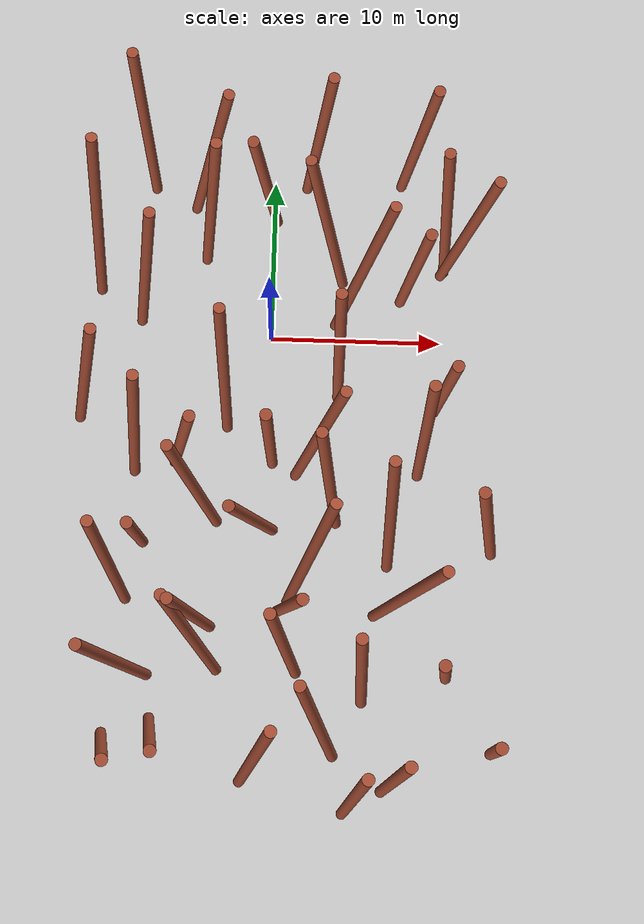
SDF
<sdf version="1.5">
 <world name="default">
  <include><uri>model://sun</uri></include>
  <include><uri>model://ground_plane</uri></include>
  <include><uri>model://asphalt_plane</uri><pose>0 0 -0.000001 0 0 0</pose></include>
  <model name="unit_cylinder_6">
   <pose>-7.63744 -24.13479 7.70000 0.12581 0.13626 0.00000</pose>
   <gravity>0 0 0</gravity>
   <link name="link">
    <inertial>
     <mass>100</mass>
     <inertia><ixx>20</ixx><ixy>0</ixy><ixz>0</ixz><iyy>20</iyy><iyz>0</iyz><izz>20</izz></inertia>
    </inertial>
    <collision name="collision">
     <geometry><cylinder><radius>0.300</radius><length>15.000</length></cylinder></geometry>
    </collision>
    <visual name="visual">
     <geometry><cylinder><radius>0.300</radius><length>15.000</length></cylinder></geometry>
     <material>
      <script><name>Gazebo/Bricks</name><uri>file://media/materials/scripts/gazebo.material</uri></script>
     </material>
    </visual>
   </link>
   <static>1</static>
  </model>
  <model name="unit_cylinder_7">
   <pose>-7.21971 -19.97460 7.70000 0.00352 -0.12097 0.00000</pose>
   <gravity>0 0 0</gravity>
   <link name="link">
    <inertial>
     <mass>100</mass>
     <inertia><ixx>20</ixx><ixy>0</ixy><ixz>0</ixz><iyy>20</iyy><iyz>0</iyz><izz>20</izz></inertia>
    </inertial>
    <collision name="collision">
     <geometry><cylinder><radius>0.300</radius><length>15.000</length></cylinder></geometry>
    </collision>
    <visual name="visual">
     <geometry><cylinder><radius>0.300</radius><length>15.000</length></cylinder></geometry>
     <material>
      <script><name>Gazebo/Bricks</name><uri>file://media/materials/scripts/gazebo.material</uri></script>
     </material>
    </visual>
   </link>
   <static>1</static>
  </model>
  <model name="unit_cylinder_8">
   <pose>-7.85168 -15.01514 7.70000 -0.09576 -0.01622 0.00000</pose>
   <gravity>0 0 0</gravity>
   <link name="link">
    <inertial>
     <mass>100</mass>
     <inertia><ixx>20</ixx><ixy>0</ixy><ixz>0</ixz><iyy>20</iyy><iyz>0</iyz><izz>20</izz></inertia>
    </inertial>
    <collision name="collision">
     <geometry><cylinder><radius>0.300</radius><length>15.000</length></cylinder></geometry>
    </collision>
    <visual name="visual">
     <geometry><cylinder><radius>0.300</radius><length>15.000</length></cylinder></geometry>
     <material>
      <script><name>Gazebo/Bricks</name><uri>file://media/materials/scripts/gazebo.material</uri></script>
     </material>
    </visual>
    <kinematic>1</kinematic>
   </link>
   <static>0</static>
   <plugin name="dynamic_obstacle_motion_8" filename="libobstaclePathPlugin.so">
    <motion_type>proximity_linear</motion_type>
    <direction>-0.683871958 -0.729602046 0.000000000</direction>
    <velocity>0.864553433</velocity>
    <activation_distance>20.000000000</activation_distance>
    <activation_model>iris</activation_model>
    <orientation>false</orientation>
    <marker_enabled>true</marker_enabled>
    <marker_id>8</marker_id>
    <marker_radius>0.300000000</marker_radius>
    <marker_height>15.000000000</marker_height>
    <marker_rate>20.0</marker_rate>
    <marker_topic>/uav_simulator/dynamic_obstacles</marker_topic>
    <marker_frame>map</marker_frame>
   </plugin>
  </model>
  <model name="unit_cylinder_9">
   <pose>-6.52075 -13.38467 7.70000 0.12282 0.05243 0.00000</pose>
   <gravity>0 0 0</gravity>
   <link name="link">
    <inertial>
     <mass>100</mass>
     <inertia><ixx>20</ixx><ixy>0</ixy><ixz>0</ixz><iyy>20</iyy><iyz>0</iyz><izz>20</izz></inertia>
    </inertial>
    <collision name="collision">
     <geometry><cylinder><radius>0.300</radius><length>15.000</length></cylinder></geometry>
    </collision>
    <visual name="visual">
     <geometry><cylinder><radius>0.300</radius><length>15.000</length></cylinder></geometry>
     <material>
      <script><name>Gazebo/Bricks</name><uri>file://media/materials/scripts/gazebo.material</uri></script>
     </material>
    </visual>
   </link>
   <static>1</static>
  </model>
  <model name="unit_cylinder_10">
   <pose>-6.92610 -7.73222 7.70000 -0.07882 0.08934 0.00000</pose>
   <gravity>0 0 0</gravity>
   <link name="link">
    <inertial>
     <mass>100</mass>
     <inertia><ixx>20</ixx><ixy>0</ixy><ixz>0</ixz><iyy>20</iyy><iyz>0</iyz><izz>20</izz></inertia>
    </inertial>
    <collision name="collision">
     <geometry><cylinder><radius>0.300</radius><length>15.000</length></cylinder></geometry>
    </collision>
    <visual name="visual">
     <geometry><cylinder><radius>0.300</radius><length>15.000</length></cylinder></geometry>
     <material>
      <script><name>Gazebo/Bricks</name><uri>file://media/materials/scripts/gazebo.material</uri></script>
     </material>
    </visual>
    <kinematic>1</kinematic>
   </link>
   <static>0</static>
   <plugin name="dynamic_obstacle_motion_10" filename="libobstaclePathPlugin.so">
    <motion_type>proximity_linear</motion_type>
    <direction>-0.184538150 -0.982825351 0.000000000</direction>
    <velocity>0.998804224</velocity>
    <activation_distance>20.000000000</activation_distance>
    <activation_model>iris</activation_model>
    <orientation>false</orientation>
    <marker_enabled>true</marker_enabled>
    <marker_id>10</marker_id>
    <marker_radius>0.300000000</marker_radius>
    <marker_height>15.000000000</marker_height>
    <marker_rate>20.0</marker_rate>
    <marker_topic>/uav_simulator/dynamic_obstacles</marker_topic>
    <marker_frame>map</marker_frame>
   </plugin>
  </model>
  <model name="unit_cylinder_11">
   <pose>-9.69069 -5.02940 7.70000 -0.02254 0.16852 0.00000</pose>
   <gravity>0 0 0</gravity>
   <link name="link">
    <inertial>
     <mass>100</mass>
     <inertia><ixx>20</ixx><ixy>0</ixy><ixz>0</ixz><iyy>20</iyy><iyz>0</iyz><izz>20</izz></inertia>
    </inertial>
    <collision name="collision">
     <geometry><cylinder><radius>0.300</radius><length>15.000</length></cylinder></geometry>
    </collision>
    <visual name="visual">
     <geometry><cylinder><radius>0.300</radius><length>15.000</length></cylinder></geometry>
     <material>
      <script><name>Gazebo/Bricks</name><uri>file://media/materials/scripts/gazebo.material</uri></script>
     </material>
    </visual>
    <kinematic>1</kinematic>
   </link>
   <static>0</static>
   <plugin name="dynamic_obstacle_motion_11" filename="libobstaclePathPlugin.so">
    <motion_type>proximity_linear</motion_type>
    <direction>-0.606140332 -0.795357717 0.000000000</direction>
    <velocity>0.567851102</velocity>
    <activation_distance>20.000000000</activation_distance>
    <activation_model>iris</activation_model>
    <orientation>false</orientation>
    <marker_enabled>true</marker_enabled>
    <marker_id>11</marker_id>
    <marker_radius>0.300000000</marker_radius>
    <marker_height>15.000000000</marker_height>
    <marker_rate>20.0</marker_rate>
    <marker_topic>/uav_simulator/dynamic_obstacles</marker_topic>
    <marker_frame>map</marker_frame>
   </plugin>
  </model>
  <model name="unit_cylinder_12">
   <pose>-6.78483 1.04766 7.70000 -0.02488 0.11770 0.00000</pose>
   <gravity>0 0 0</gravity>
   <link name="link">
    <inertial>
     <mass>100</mass>
     <inertia><ixx>20</ixx><ixy>0</ixy><ixz>0</ixz><iyy>20</iyy><iyz>0</iyz><izz>20</izz></inertia>
    </inertial>
    <collision name="collision">
     <geometry><cylinder><radius>0.300</radius><length>15.000</length></cylinder></geometry>
    </collision>
    <visual name="visual">
     <geometry><cylinder><radius>0.300</radius><length>15.000</length></cylinder></geometry>
     <material>
      <script><name>Gazebo/Bricks</name><uri>file://media/materials/scripts/gazebo.material</uri></script>
     </material>
    </visual>
   </link>
   <static>1</static>
  </model>
  <model name="unit_cylinder_13">
   <pose>-9.58581 3.96208 7.70000 -0.16946 0.07617 0.00000</pose>
   <gravity>0 0 0</gravity>
   <link name="link">
    <inertial>
     <mass>100</mass>
     <inertia><ixx>20</ixx><ixy>0</ixy><ixz>0</ixz><iyy>20</iyy><iyz>0</iyz><izz>20</izz></inertia>
    </inertial>
    <collision name="collision">
     <geometry><cylinder><radius>0.300</radius><length>15.000</length></cylinder></geometry>
    </collision>
    <visual name="visual">
     <geometry><cylinder><radius>0.300</radius><length>15.000</length></cylinder></geometry>
     <material>
      <script><name>Gazebo/Bricks</name><uri>file://media/materials/scripts/gazebo.material</uri></script>
     </material>
    </visual>
   </link>
   <static>1</static>
  </model>
  <model name="unit_cylinder_14">
   <pose>-7.21917 9.66156 7.70000 -0.03544 -0.00035 0.00000</pose>
   <gravity>0 0 0</gravity>
   <link name="link">
    <inertial>
     <mass>100</mass>
     <inertia><ixx>20</ixx><ixy>0</ixy><ixz>0</ixz><iyy>20</iyy><iyz>0</iyz><izz>20</izz></inertia>
    </inertial>
    <collision name="collision">
     <geometry><cylinder><radius>0.300</radius><length>15.000</length></cylinder></geometry>
    </collision>
    <visual name="visual">
     <geometry><cylinder><radius>0.300</radius><length>15.000</length></cylinder></geometry>
     <material>
      <script><name>Gazebo/Bricks</name><uri>file://media/materials/scripts/gazebo.material</uri></script>
     </material>
    </visual>
   </link>
   <static>1</static>
  </model>
  <model name="unit_cylinder_19">
   <pose>-5.27744 -23.47259 7.70000 0.15441 0.10550 0.00000</pose>
   <gravity>0 0 0</gravity>
   <link name="link">
    <inertial>
     <mass>100</mass>
     <inertia><ixx>20</ixx><ixy>0</ixy><ixz>0</ixz><iyy>20</iyy><iyz>0</iyz><izz>20</izz></inertia>
    </inertial>
    <collision name="collision">
     <geometry><cylinder><radius>0.300</radius><length>15.000</length></cylinder></geometry>
    </collision>
    <visual name="visual">
     <geometry><cylinder><radius>0.300</radius><length>15.000</length></cylinder></geometry>
     <material>
      <script><name>Gazebo/Bricks</name><uri>file://media/materials/scripts/gazebo.material</uri></script>
     </material>
    </visual>
    <kinematic>1</kinematic>
   </link>
   <static>0</static>
   <plugin name="dynamic_obstacle_motion_19" filename="libobstaclePathPlugin.so">
    <motion_type>proximity_linear</motion_type>
    <direction>-0.062288158 0.998058207 0.000000000</direction>
    <velocity>1.470388580</velocity>
    <activation_distance>20.000000000</activation_distance>
    <activation_model>iris</activation_model>
    <orientation>false</orientation>
    <marker_enabled>true</marker_enabled>
    <marker_id>19</marker_id>
    <marker_radius>0.300000000</marker_radius>
    <marker_height>15.000000000</marker_height>
    <marker_rate>20.0</marker_rate>
    <marker_topic>/uav_simulator/dynamic_obstacles</marker_topic>
    <marker_frame>map</marker_frame>
   </plugin>
  </model>
  <model name="unit_cylinder_20">
   <pose>-3.41988 -18.59345 7.70000 -0.13182 -0.13110 0.00000</pose>
   <gravity>0 0 0</gravity>
   <link name="link">
    <inertial>
     <mass>100</mass>
     <inertia><ixx>20</ixx><ixy>0</ixy><ixz>0</ixz><iyy>20</iyy><iyz>0</iyz><izz>20</izz></inertia>
    </inertial>
    <collision name="collision">
     <geometry><cylinder><radius>0.300</radius><length>15.000</length></cylinder></geometry>
    </collision>
    <visual name="visual">
     <geometry><cylinder><radius>0.300</radius><length>15.000</length></cylinder></geometry>
     <material>
      <script><name>Gazebo/Bricks</name><uri>file://media/materials/scripts/gazebo.material</uri></script>
     </material>
    </visual>
    <kinematic>1</kinematic>
   </link>
   <static>0</static>
   <plugin name="dynamic_obstacle_motion_20" filename="libobstaclePathPlugin.so">
    <motion_type>proximity_linear</motion_type>
    <direction>-0.927345403 -0.374206499 -0.000000000</direction>
    <velocity>1.394727384</velocity>
    <activation_distance>20.000000000</activation_distance>
    <activation_model>iris</activation_model>
    <orientation>false</orientation>
    <marker_enabled>true</marker_enabled>
    <marker_id>20</marker_id>
    <marker_radius>0.300000000</marker_radius>
    <marker_height>15.000000000</marker_height>
    <marker_rate>20.0</marker_rate>
    <marker_topic>/uav_simulator/dynamic_obstacles</marker_topic>
    <marker_frame>map</marker_frame>
   </plugin>
  </model>
  <model name="unit_cylinder_21">
   <pose>-3.49956 -17.47808 7.70000 0.04058 -0.07986 0.00000</pose>
   <gravity>0 0 0</gravity>
   <link name="link">
    <inertial>
     <mass>100</mass>
     <inertia><ixx>20</ixx><ixy>0</ixy><ixz>0</ixz><iyy>20</iyy><iyz>0</iyz><izz>20</izz></inertia>
    </inertial>
    <collision name="collision">
     <geometry><cylinder><radius>0.300</radius><length>15.000</length></cylinder></geometry>
    </collision>
    <visual name="visual">
     <geometry><cylinder><radius>0.300</radius><length>15.000</length></cylinder></geometry>
     <material>
      <script><name>Gazebo/Bricks</name><uri>file://media/materials/scripts/gazebo.material</uri></script>
     </material>
    </visual>
   </link>
   <static>1</static>
  </model>
  <model name="unit_cylinder_22">
   <pose>-3.60769 -10.86104 7.70000 -0.04009 -0.11386 0.00000</pose>
   <gravity>0 0 0</gravity>
   <link name="link">
    <inertial>
     <mass>100</mass>
     <inertia><ixx>20</ixx><ixy>0</ixy><ixz>0</ixz><iyy>20</iyy><iyz>0</iyz><izz>20</izz></inertia>
    </inertial>
    <collision name="collision">
     <geometry><cylinder><radius>0.300</radius><length>15.000</length></cylinder></geometry>
    </collision>
    <visual name="visual">
     <geometry><cylinder><radius>0.300</radius><length>15.000</length></cylinder></geometry>
     <material>
      <script><name>Gazebo/Bricks</name><uri>file://media/materials/scripts/gazebo.material</uri></script>
     </material>
    </visual>
   </link>
   <static>1</static>
  </model>
  <model name="unit_cylinder_23">
   <pose>-4.39550 -8.40183 7.70000 0.09152 0.12374 0.00000</pose>
   <gravity>0 0 0</gravity>
   <link name="link">
    <inertial>
     <mass>100</mass>
     <inertia><ixx>20</ixx><ixy>0</ixy><ixz>0</ixz><iyy>20</iyy><iyz>0</iyz><izz>20</izz></inertia>
    </inertial>
    <collision name="collision">
     <geometry><cylinder><radius>0.300</radius><length>15.000</length></cylinder></geometry>
    </collision>
    <visual name="visual">
     <geometry><cylinder><radius>0.300</radius><length>15.000</length></cylinder></geometry>
     <material>
      <script><name>Gazebo/Bricks</name><uri>file://media/materials/scripts/gazebo.material</uri></script>
     </material>
    </visual>
    <kinematic>1</kinematic>
   </link>
   <static>0</static>
   <plugin name="dynamic_obstacle_motion_23" filename="libobstaclePathPlugin.so">
    <motion_type>proximity_linear</motion_type>
    <direction>0.630403638 -0.776267514 0.000000000</direction>
    <velocity>1.757489848</velocity>
    <activation_distance>20.000000000</activation_distance>
    <activation_model>iris</activation_model>
    <orientation>false</orientation>
    <marker_enabled>true</marker_enabled>
    <marker_id>23</marker_id>
    <marker_radius>0.300000000</marker_radius>
    <marker_height>15.000000000</marker_height>
    <marker_rate>20.0</marker_rate>
    <marker_topic>/uav_simulator/dynamic_obstacles</marker_topic>
    <marker_frame>map</marker_frame>
   </plugin>
  </model>
  <model name="unit_cylinder_24">
   <pose>-2.30949 -4.59314 7.70000 -0.12818 0.00588 0.00000</pose>
   <gravity>0 0 0</gravity>
   <link name="link">
    <inertial>
     <mass>100</mass>
     <inertia><ixx>20</ixx><ixy>0</ixy><ixz>0</ixz><iyy>20</iyy><iyz>0</iyz><izz>20</izz></inertia>
    </inertial>
    <collision name="collision">
     <geometry><cylinder><radius>0.300</radius><length>15.000</length></cylinder></geometry>
    </collision>
    <visual name="visual">
     <geometry><cylinder><radius>0.300</radius><length>15.000</length></cylinder></geometry>
     <material>
      <script><name>Gazebo/Bricks</name><uri>file://media/materials/scripts/gazebo.material</uri></script>
     </material>
    </visual>
   </link>
   <static>1</static>
  </model>
  <model name="unit_cylinder_25">
   <pose>-3.36916 4.95605 7.70000 -0.01222 0.08057 0.00000</pose>
   <gravity>0 0 0</gravity>
   <link name="link">
    <inertial>
     <mass>100</mass>
     <inertia><ixx>20</ixx><ixy>0</ixy><ixz>0</ixz><iyy>20</iyy><iyz>0</iyz><izz>20</izz></inertia>
    </inertial>
    <collision name="collision">
     <geometry><cylinder><radius>0.300</radius><length>15.000</length></cylinder></geometry>
    </collision>
    <visual name="visual">
     <geometry><cylinder><radius>0.300</radius><length>15.000</length></cylinder></geometry>
     <material>
      <script><name>Gazebo/Bricks</name><uri>file://media/materials/scripts/gazebo.material</uri></script>
     </material>
    </visual>
    <kinematic>1</kinematic>
   </link>
   <static>0</static>
   <plugin name="dynamic_obstacle_motion_25" filename="libobstaclePathPlugin.so">
    <motion_type>proximity_linear</motion_type>
    <direction>0.525420193 0.850842889 0.000000000</direction>
    <velocity>0.675819266</velocity>
    <activation_distance>20.000000000</activation_distance>
    <activation_model>iris</activation_model>
    <orientation>false</orientation>
    <marker_enabled>true</marker_enabled>
    <marker_id>25</marker_id>
    <marker_radius>0.300000000</marker_radius>
    <marker_height>15.000000000</marker_height>
    <marker_rate>20.0</marker_rate>
    <marker_topic>/uav_simulator/dynamic_obstacles</marker_topic>
    <marker_frame>map</marker_frame>
   </plugin>
  </model>
  <model name="unit_cylinder_26">
   <pose>-3.48844 7.95082 7.70000 0.02307 0.16694 0.00000</pose>
   <gravity>0 0 0</gravity>
   <link name="link">
    <inertial>
     <mass>100</mass>
     <inertia><ixx>20</ixx><ixy>0</ixy><ixz>0</ixz><iyy>20</iyy><iyz>0</iyz><izz>20</izz></inertia>
    </inertial>
    <collision name="collision">
     <geometry><cylinder><radius>0.300</radius><length>15.000</length></cylinder></geometry>
    </collision>
    <visual name="visual">
     <geometry><cylinder><radius>0.300</radius><length>15.000</length></cylinder></geometry>
     <material>
      <script><name>Gazebo/Bricks</name><uri>file://media/materials/scripts/gazebo.material</uri></script>
     </material>
    </visual>
    <kinematic>1</kinematic>
   </link>
   <static>0</static>
   <plugin name="dynamic_obstacle_motion_26" filename="libobstaclePathPlugin.so">
    <motion_type>proximity_linear</motion_type>
    <direction>-0.587286721 -0.809378964 0.000000000</direction>
    <velocity>0.431419781</velocity>
    <activation_distance>20.000000000</activation_distance>
    <activation_model>iris</activation_model>
    <orientation>false</orientation>
    <marker_enabled>true</marker_enabled>
    <marker_id>26</marker_id>
    <marker_radius>0.300000000</marker_radius>
    <marker_height>15.000000000</marker_height>
    <marker_rate>20.0</marker_rate>
    <marker_topic>/uav_simulator/dynamic_obstacles</marker_topic>
    <marker_frame>map</marker_frame>
   </plugin>
  </model>
  <model name="unit_cylinder_31">
   <pose>-0.04816 -24.60423 7.70000 -0.13135 0.12146 0.00000</pose>
   <gravity>0 0 0</gravity>
   <link name="link">
    <inertial>
     <mass>100</mass>
     <inertia><ixx>20</ixx><ixy>0</ixy><ixz>0</ixz><iyy>20</iyy><iyz>0</iyz><izz>20</izz></inertia>
    </inertial>
    <collision name="collision">
     <geometry><cylinder><radius>0.300</radius><length>15.000</length></cylinder></geometry>
    </collision>
    <visual name="visual">
     <geometry><cylinder><radius>0.300</radius><length>15.000</length></cylinder></geometry>
     <material>
      <script><name>Gazebo/Bricks</name><uri>file://media/materials/scripts/gazebo.material</uri></script>
     </material>
    </visual>
    <kinematic>1</kinematic>
   </link>
   <static>0</static>
   <plugin name="dynamic_obstacle_motion_31" filename="libobstaclePathPlugin.so">
    <motion_type>proximity_linear</motion_type>
    <direction>0.661827066 -0.749656545 0.000000000</direction>
    <velocity>1.083418146</velocity>
    <activation_distance>20.000000000</activation_distance>
    <activation_model>iris</activation_model>
    <orientation>false</orientation>
    <marker_enabled>true</marker_enabled>
    <marker_id>31</marker_id>
    <marker_radius>0.300000000</marker_radius>
    <marker_height>15.000000000</marker_height>
    <marker_rate>20.0</marker_rate>
    <marker_topic>/uav_simulator/dynamic_obstacles</marker_topic>
    <marker_frame>map</marker_frame>
   </plugin>
  </model>
  <model name="unit_cylinder_32">
   <pose>1.32426 -18.99143 7.70000 -0.08443 -0.08821 0.00000</pose>
   <gravity>0 0 0</gravity>
   <link name="link">
    <inertial>
     <mass>100</mass>
     <inertia><ixx>20</ixx><ixy>0</ixy><ixz>0</ixz><iyy>20</iyy><iyz>0</iyz><izz>20</izz></inertia>
    </inertial>
    <collision name="collision">
     <geometry><cylinder><radius>0.300</radius><length>15.000</length></cylinder></geometry>
    </collision>
    <visual name="visual">
     <geometry><cylinder><radius>0.300</radius><length>15.000</length></cylinder></geometry>
     <material>
      <script><name>Gazebo/Bricks</name><uri>file://media/materials/scripts/gazebo.material</uri></script>
     </material>
    </visual>
    <kinematic>1</kinematic>
   </link>
   <static>0</static>
   <plugin name="dynamic_obstacle_motion_32" filename="libobstaclePathPlugin.so">
    <motion_type>proximity_linear</motion_type>
    <direction>0.594069250 -0.804413902 0.000000000</direction>
    <velocity>0.808603611</velocity>
    <activation_distance>20.000000000</activation_distance>
    <activation_model>iris</activation_model>
    <orientation>false</orientation>
    <marker_enabled>true</marker_enabled>
    <marker_id>32</marker_id>
    <marker_radius>0.300000000</marker_radius>
    <marker_height>15.000000000</marker_height>
    <marker_rate>20.0</marker_rate>
    <marker_topic>/uav_simulator/dynamic_obstacles</marker_topic>
    <marker_frame>map</marker_frame>
   </plugin>
  </model>
  <model name="unit_cylinder_33">
   <pose>1.47575 -16.93388 7.70000 0.09516 0.08984 0.00000</pose>
   <gravity>0 0 0</gravity>
   <link name="link">
    <inertial>
     <mass>100</mass>
     <inertia><ixx>20</ixx><ixy>0</ixy><ixz>0</ixz><iyy>20</iyy><iyz>0</iyz><izz>20</izz></inertia>
    </inertial>
    <collision name="collision">
     <geometry><cylinder><radius>0.300</radius><length>15.000</length></cylinder></geometry>
    </collision>
    <visual name="visual">
     <geometry><cylinder><radius>0.300</radius><length>15.000</length></cylinder></geometry>
     <material>
      <script><name>Gazebo/Bricks</name><uri>file://media/materials/scripts/gazebo.material</uri></script>
     </material>
    </visual>
   </link>
   <static>1</static>
  </model>
  <model name="unit_cylinder_34">
   <pose>-0.48350 -12.46815 7.70000 0.12076 -0.12683 0.00000</pose>
   <gravity>0 0 0</gravity>
   <link name="link">
    <inertial>
     <mass>100</mass>
     <inertia><ixx>20</ixx><ixy>0</ixy><ixz>0</ixz><iyy>20</iyy><iyz>0</iyz><izz>20</izz></inertia>
    </inertial>
    <collision name="collision">
     <geometry><cylinder><radius>0.300</radius><length>15.000</length></cylinder></geometry>
    </collision>
    <visual name="visual">
     <geometry><cylinder><radius>0.300</radius><length>15.000</length></cylinder></geometry>
     <material>
      <script><name>Gazebo/Bricks</name><uri>file://media/materials/scripts/gazebo.material</uri></script>
     </material>
    </visual>
    <kinematic>1</kinematic>
   </link>
   <static>0</static>
   <plugin name="dynamic_obstacle_motion_34" filename="libobstaclePathPlugin.so">
    <motion_type>proximity_linear</motion_type>
    <direction>-0.536616075 -0.843826516 0.000000000</direction>
    <velocity>1.401978337</velocity>
    <activation_distance>20.000000000</activation_distance>
    <activation_model>iris</activation_model>
    <orientation>false</orientation>
    <marker_enabled>true</marker_enabled>
    <marker_id>34</marker_id>
    <marker_radius>0.300000000</marker_radius>
    <marker_height>15.000000000</marker_height>
    <marker_rate>20.0</marker_rate>
    <marker_topic>/uav_simulator/dynamic_obstacles</marker_topic>
    <marker_frame>map</marker_frame>
   </plugin>
  </model>
  <model name="unit_cylinder_35">
   <pose>0.24320 -8.28068 7.70000 0.08642 -0.01053 0.00000</pose>
   <gravity>0 0 0</gravity>
   <link name="link">
    <inertial>
     <mass>100</mass>
     <inertia><ixx>20</ixx><ixy>0</ixy><ixz>0</ixz><iyy>20</iyy><iyz>0</iyz><izz>20</izz></inertia>
    </inertial>
    <collision name="collision">
     <geometry><cylinder><radius>0.300</radius><length>15.000</length></cylinder></geometry>
    </collision>
    <visual name="visual">
     <geometry><cylinder><radius>0.300</radius><length>15.000</length></cylinder></geometry>
     <material>
      <script><name>Gazebo/Bricks</name><uri>file://media/materials/scripts/gazebo.material</uri></script>
     </material>
    </visual>
   </link>
   <static>1</static>
  </model>
  <model name="unit_cylinder_36">
   <pose>-0.36850 6.30102 7.70000 0.14632 -0.07336 0.00000</pose>
   <gravity>0 0 0</gravity>
   <link name="link">
    <inertial>
     <mass>100</mass>
     <inertia><ixx>20</ixx><ixy>0</ixy><ixz>0</ixz><iyy>20</iyy><iyz>0</iyz><izz>20</izz></inertia>
    </inertial>
    <collision name="collision">
     <geometry><cylinder><radius>0.300</radius><length>15.000</length></cylinder></geometry>
    </collision>
    <visual name="visual">
     <geometry><cylinder><radius>0.300</radius><length>15.000</length></cylinder></geometry>
     <material>
      <script><name>Gazebo/Bricks</name><uri>file://media/materials/scripts/gazebo.material</uri></script>
     </material>
    </visual>
    <kinematic>1</kinematic>
   </link>
   <static>0</static>
   <plugin name="dynamic_obstacle_motion_36" filename="libobstaclePathPlugin.so">
    <motion_type>proximity_linear</motion_type>
    <direction>-0.965125675 0.261786997 -0.000000000</direction>
    <velocity>0.670882417</velocity>
    <activation_distance>20.000000000</activation_distance>
    <activation_model>iris</activation_model>
    <orientation>false</orientation>
    <marker_enabled>true</marker_enabled>
    <marker_id>36</marker_id>
    <marker_radius>0.300000000</marker_radius>
    <marker_height>15.000000000</marker_height>
    <marker_rate>20.0</marker_rate>
    <marker_topic>/uav_simulator/dynamic_obstacles</marker_topic>
    <marker_frame>map</marker_frame>
   </plugin>
  </model>
  <model name="unit_cylinder_41">
   <pose>4.97613 -26.36178 7.70000 -0.10227 0.03844 0.00000</pose>
   <gravity>0 0 0</gravity>
   <link name="link">
    <inertial>
     <mass>100</mass>
     <inertia><ixx>20</ixx><ixy>0</ixy><ixz>0</ixz><iyy>20</iyy><iyz>0</iyz><izz>20</izz></inertia>
    </inertial>
    <collision name="collision">
     <geometry><cylinder><radius>0.300</radius><length>15.000</length></cylinder></geometry>
    </collision>
    <visual name="visual">
     <geometry><cylinder><radius>0.300</radius><length>15.000</length></cylinder></geometry>
     <material>
      <script><name>Gazebo/Bricks</name><uri>file://media/materials/scripts/gazebo.material</uri></script>
     </material>
    </visual>
   </link>
   <static>1</static>
  </model>
  <model name="unit_cylinder_42">
   <pose>3.11386 -22.83111 7.70000 -0.16963 -0.13553 0.00000</pose>
   <gravity>0 0 0</gravity>
   <link name="link">
    <inertial>
     <mass>100</mass>
     <inertia><ixx>20</ixx><ixy>0</ixy><ixz>0</ixz><iyy>20</iyy><iyz>0</iyz><izz>20</izz></inertia>
    </inertial>
    <collision name="collision">
     <geometry><cylinder><radius>0.300</radius><length>15.000</length></cylinder></geometry>
    </collision>
    <visual name="visual">
     <geometry><cylinder><radius>0.300</radius><length>15.000</length></cylinder></geometry>
     <material>
      <script><name>Gazebo/Bricks</name><uri>file://media/materials/scripts/gazebo.material</uri></script>
     </material>
    </visual>
    <kinematic>1</kinematic>
   </link>
   <static>0</static>
   <plugin name="dynamic_obstacle_motion_42" filename="libobstaclePathPlugin.so">
    <motion_type>proximity_linear</motion_type>
    <direction>0.186530361 0.982449197 -0.000000000</direction>
    <velocity>1.377841980</velocity>
    <activation_distance>20.000000000</activation_distance>
    <activation_model>iris</activation_model>
    <orientation>false</orientation>
    <marker_enabled>true</marker_enabled>
    <marker_id>42</marker_id>
    <marker_radius>0.300000000</marker_radius>
    <marker_height>15.000000000</marker_height>
    <marker_rate>20.0</marker_rate>
    <marker_topic>/uav_simulator/dynamic_obstacles</marker_topic>
    <marker_frame>map</marker_frame>
   </plugin>
  </model>
  <model name="unit_cylinder_43">
   <pose>5.28005 -20.25804 7.70000 -0.11826 -0.05108 0.00000</pose>
   <gravity>0 0 0</gravity>
   <link name="link">
    <inertial>
     <mass>100</mass>
     <inertia><ixx>20</ixx><ixy>0</ixy><ixz>0</ixz><iyy>20</iyy><iyz>0</iyz><izz>20</izz></inertia>
    </inertial>
    <collision name="collision">
     <geometry><cylinder><radius>0.300</radius><length>15.000</length></cylinder></geometry>
    </collision>
    <visual name="visual">
     <geometry><cylinder><radius>0.300</radius><length>15.000</length></cylinder></geometry>
     <material>
      <script><name>Gazebo/Bricks</name><uri>file://media/materials/scripts/gazebo.material</uri></script>
     </material>
    </visual>
   </link>
   <static>1</static>
  </model>
  <model name="unit_cylinder_44">
   <pose>2.49913 -14.36906 7.70000 -0.17038 0.15007 0.00000</pose>
   <gravity>0 0 0</gravity>
   <link name="link">
    <inertial>
     <mass>100</mass>
     <inertia><ixx>20</ixx><ixy>0</ixy><ixz>0</ixz><iyy>20</iyy><iyz>0</iyz><izz>20</izz></inertia>
    </inertial>
    <collision name="collision">
     <geometry><cylinder><radius>0.300</radius><length>15.000</length></cylinder></geometry>
    </collision>
    <visual name="visual">
     <geometry><cylinder><radius>0.300</radius><length>15.000</length></cylinder></geometry>
     <material>
      <script><name>Gazebo/Bricks</name><uri>file://media/materials/scripts/gazebo.material</uri></script>
     </material>
    </visual>
   </link>
   <static>1</static>
  </model>
  <model name="unit_cylinder_45">
   <pose>3.44280 -10.38845 7.70000 -0.09093 -0.08006 0.00000</pose>
   <gravity>0 0 0</gravity>
   <link name="link">
    <inertial>
     <mass>100</mass>
     <inertia><ixx>20</ixx><ixy>0</ixy><ixz>0</ixz><iyy>20</iyy><iyz>0</iyz><izz>20</izz></inertia>
    </inertial>
    <collision name="collision">
     <geometry><cylinder><radius>0.300</radius><length>15.000</length></cylinder></geometry>
    </collision>
    <visual name="visual">
     <geometry><cylinder><radius>0.300</radius><length>15.000</length></cylinder></geometry>
     <material>
      <script><name>Gazebo/Bricks</name><uri>file://media/materials/scripts/gazebo.material</uri></script>
     </material>
    </visual>
   </link>
   <static>1</static>
  </model>
  <model name="unit_cylinder_46">
   <pose>2.81095 -7.98750 7.70000 -0.04341 0.15385 0.00000</pose>
   <gravity>0 0 0</gravity>
   <link name="link">
    <inertial>
     <mass>100</mass>
     <inertia><ixx>20</ixx><ixy>0</ixy><ixz>0</ixz><iyy>20</iyy><iyz>0</iyz><izz>20</izz></inertia>
    </inertial>
    <collision name="collision">
     <geometry><cylinder><radius>0.300</radius><length>15.000</length></cylinder></geometry>
    </collision>
    <visual name="visual">
     <geometry><cylinder><radius>0.300</radius><length>15.000</length></cylinder></geometry>
     <material>
      <script><name>Gazebo/Bricks</name><uri>file://media/materials/scripts/gazebo.material</uri></script>
     </material>
    </visual>
   </link>
   <static>1</static>
  </model>
  <model name="unit_cylinder_47">
   <pose>3.83115 -3.13828 7.70000 -0.05172 -0.02404 0.00000</pose>
   <gravity>0 0 0</gravity>
   <link name="link">
    <inertial>
     <mass>100</mass>
     <inertia><ixx>20</ixx><ixy>0</ixy><ixz>0</ixz><iyy>20</iyy><iyz>0</iyz><izz>20</izz></inertia>
    </inertial>
    <collision name="collision">
     <geometry><cylinder><radius>0.300</radius><length>15.000</length></cylinder></geometry>
    </collision>
    <visual name="visual">
     <geometry><cylinder><radius>0.300</radius><length>15.000</length></cylinder></geometry>
     <material>
      <script><name>Gazebo/Bricks</name><uri>file://media/materials/scripts/gazebo.material</uri></script>
     </material>
    </visual>
   </link>
   <static>1</static>
  </model>
  <model name="unit_cylinder_48">
   <pose>5.00750 1.40705 7.70000 -0.07033 0.16624 0.00000</pose>
   <gravity>0 0 0</gravity>
   <link name="link">
    <inertial>
     <mass>100</mass>
     <inertia><ixx>20</ixx><ixy>0</ixy><ixz>0</ixz><iyy>20</iyy><iyz>0</iyz><izz>20</izz></inertia>
    </inertial>
    <collision name="collision">
     <geometry><cylinder><radius>0.300</radius><length>15.000</length></cylinder></geometry>
    </collision>
    <visual name="visual">
     <geometry><cylinder><radius>0.300</radius><length>15.000</length></cylinder></geometry>
     <material>
      <script><name>Gazebo/Bricks</name><uri>file://media/materials/scripts/gazebo.material</uri></script>
     </material>
    </visual>
   </link>
   <static>1</static>
  </model>
  <model name="unit_cylinder_49">
   <pose>3.08418 3.91890 7.70000 -0.04717 -0.14537 0.00000</pose>
   <gravity>0 0 0</gravity>
   <link name="link">
    <inertial>
     <mass>100</mass>
     <inertia><ixx>20</ixx><ixy>0</ixy><ixz>0</ixz><iyy>20</iyy><iyz>0</iyz><izz>20</izz></inertia>
    </inertial>
    <collision name="collision">
     <geometry><cylinder><radius>0.300</radius><length>15.000</length></cylinder></geometry>
    </collision>
    <visual name="visual">
     <geometry><cylinder><radius>0.300</radius><length>15.000</length></cylinder></geometry>
     <material>
      <script><name>Gazebo/Bricks</name><uri>file://media/materials/scripts/gazebo.material</uri></script>
     </material>
    </visual>
   </link>
   <static>1</static>
  </model>
  <model name="unit_cylinder_50">
   <pose>2.47687 9.23687 7.70000 0.05515 0.07561 0.00000</pose>
   <gravity>0 0 0</gravity>
   <link name="link">
    <inertial>
     <mass>100</mass>
     <inertia><ixx>20</ixx><ixy>0</ixy><ixz>0</ixz><iyy>20</iyy><iyz>0</iyz><izz>20</izz></inertia>
    </inertial>
    <collision name="collision">
     <geometry><cylinder><radius>0.300</radius><length>15.000</length></cylinder></geometry>
    </collision>
    <visual name="visual">
     <geometry><cylinder><radius>0.300</radius><length>15.000</length></cylinder></geometry>
     <material>
      <script><name>Gazebo/Bricks</name><uri>file://media/materials/scripts/gazebo.material</uri></script>
     </material>
    </visual>
   </link>
   <static>1</static>
  </model>
  <model name="unit_cylinder_57">
   <pose>6.97835 -25.44928 7.70000 -0.06044 0.02459 0.00000</pose>
   <gravity>0 0 0</gravity>
   <link name="link">
    <inertial>
     <mass>100</mass>
     <inertia><ixx>20</ixx><ixy>0</ixy><ixz>0</ixz><iyy>20</iyy><iyz>0</iyz><izz>20</izz></inertia>
    </inertial>
    <collision name="collision">
     <geometry><cylinder><radius>0.300</radius><length>15.000</length></cylinder></geometry>
    </collision>
    <visual name="visual">
     <geometry><cylinder><radius>0.300</radius><length>15.000</length></cylinder></geometry>
     <material>
      <script><name>Gazebo/Bricks</name><uri>file://media/materials/scripts/gazebo.material</uri></script>
     </material>
    </visual>
   </link>
   <static>1</static>
  </model>
  <model name="unit_cylinder_58">
   <pose>9.50318 -20.08103 7.70000 0.05343 -0.11122 0.00000</pose>
   <gravity>0 0 0</gravity>
   <link name="link">
    <inertial>
     <mass>100</mass>
     <inertia><ixx>20</ixx><ixy>0</ixy><ixz>0</ixz><iyy>20</iyy><iyz>0</iyz><izz>20</izz></inertia>
    </inertial>
    <collision name="collision">
     <geometry><cylinder><radius>0.300</radius><length>15.000</length></cylinder></geometry>
    </collision>
    <visual name="visual">
     <geometry><cylinder><radius>0.300</radius><length>15.000</length></cylinder></geometry>
     <material>
      <script><name>Gazebo/Bricks</name><uri>file://media/materials/scripts/gazebo.material</uri></script>
     </material>
    </visual>
   </link>
   <static>1</static>
  </model>
  <model name="unit_cylinder_59">
   <pose>7.54137 -16.24297 7.70000 -0.01059 0.17180 0.00000</pose>
   <gravity>0 0 0</gravity>
   <link name="link">
    <inertial>
     <mass>100</mass>
     <inertia><ixx>20</ixx><ixy>0</ixy><ixz>0</ixz><iyy>20</iyy><iyz>0</iyz><izz>20</izz></inertia>
    </inertial>
    <collision name="collision">
     <geometry><cylinder><radius>0.300</radius><length>15.000</length></cylinder></geometry>
    </collision>
    <visual name="visual">
     <geometry><cylinder><radius>0.300</radius><length>15.000</length></cylinder></geometry>
     <material>
      <script><name>Gazebo/Bricks</name><uri>file://media/materials/scripts/gazebo.material</uri></script>
     </material>
    </visual>
    <kinematic>1</kinematic>
   </link>
   <static>0</static>
   <plugin name="dynamic_obstacle_motion_59" filename="libobstaclePathPlugin.so">
    <motion_type>proximity_linear</motion_type>
    <direction>0.132988354 -0.991117600 -0.000000000</direction>
    <velocity>0.810081628</velocity>
    <activation_distance>20.000000000</activation_distance>
    <activation_model>iris</activation_model>
    <orientation>false</orientation>
    <marker_enabled>true</marker_enabled>
    <marker_id>59</marker_id>
    <marker_radius>0.300000000</marker_radius>
    <marker_height>15.000000000</marker_height>
    <marker_rate>20.0</marker_rate>
    <marker_topic>/uav_simulator/dynamic_obstacles</marker_topic>
    <marker_frame>map</marker_frame>
   </plugin>
  </model>
  <model name="unit_cylinder_60">
   <pose>6.65868 -12.25929 7.70000 -0.16900 -0.04503 0.00000</pose>
   <gravity>0 0 0</gravity>
   <link name="link">
    <inertial>
     <mass>100</mass>
     <inertia><ixx>20</ixx><ixy>0</ixy><ixz>0</ixz><iyy>20</iyy><iyz>0</iyz><izz>20</izz></inertia>
    </inertial>
    <collision name="collision">
     <geometry><cylinder><radius>0.300</radius><length>15.000</length></cylinder></geometry>
    </collision>
    <visual name="visual">
     <geometry><cylinder><radius>0.300</radius><length>15.000</length></cylinder></geometry>
     <material>
      <script><name>Gazebo/Bricks</name><uri>file://media/materials/scripts/gazebo.material</uri></script>
     </material>
    </visual>
    <kinematic>1</kinematic>
   </link>
   <static>0</static>
   <plugin name="dynamic_obstacle_motion_60" filename="libobstaclePathPlugin.so">
    <motion_type>proximity_linear</motion_type>
    <direction>-0.011416014 -0.999934835 0.000000000</direction>
    <velocity>1.272272287</velocity>
    <activation_distance>20.000000000</activation_distance>
    <activation_model>iris</activation_model>
    <orientation>false</orientation>
    <marker_enabled>true</marker_enabled>
    <marker_id>60</marker_id>
    <marker_radius>0.300000000</marker_radius>
    <marker_height>15.000000000</marker_height>
    <marker_rate>20.0</marker_rate>
    <marker_topic>/uav_simulator/dynamic_obstacles</marker_topic>
    <marker_frame>map</marker_frame>
   </plugin>
  </model>
  <model name="unit_cylinder_61">
   <pose>8.43897 -7.70658 7.70000 -0.05784 -0.03296 0.00000</pose>
   <gravity>0 0 0</gravity>
   <link name="link">
    <inertial>
     <mass>100</mass>
     <inertia><ixx>20</ixx><ixy>0</ixy><ixz>0</ixz><iyy>20</iyy><iyz>0</iyz><izz>20</izz></inertia>
    </inertial>
    <collision name="collision">
     <geometry><cylinder><radius>0.300</radius><length>15.000</length></cylinder></geometry>
    </collision>
    <visual name="visual">
     <geometry><cylinder><radius>0.300</radius><length>15.000</length></cylinder></geometry>
     <material>
      <script><name>Gazebo/Bricks</name><uri>file://media/materials/scripts/gazebo.material</uri></script>
     </material>
    </visual>
   </link>
   <static>1</static>
  </model>
  <model name="unit_cylinder_62">
   <pose>9.45233 -5.28285 7.70000 0.12887 -0.02154 0.00000</pose>
   <gravity>0 0 0</gravity>
   <link name="link">
    <inertial>
     <mass>100</mass>
     <inertia><ixx>20</ixx><ixy>0</ixy><ixz>0</ixz><iyy>20</iyy><iyz>0</iyz><izz>20</izz></inertia>
    </inertial>
    <collision name="collision">
     <geometry><cylinder><radius>0.300</radius><length>15.000</length></cylinder></geometry>
    </collision>
    <visual name="visual">
     <geometry><cylinder><radius>0.300</radius><length>15.000</length></cylinder></geometry>
     <material>
      <script><name>Gazebo/Bricks</name><uri>file://media/materials/scripts/gazebo.material</uri></script>
     </material>
    </visual>
   </link>
   <static>1</static>
  </model>
  <model name="unit_cylinder_63">
   <pose>7.79728 1.47481 7.70000 0.13372 0.02637 0.00000</pose>
   <gravity>0 0 0</gravity>
   <link name="link">
    <inertial>
     <mass>100</mass>
     <inertia><ixx>20</ixx><ixy>0</ixy><ixz>0</ixz><iyy>20</iyy><iyz>0</iyz><izz>20</izz></inertia>
    </inertial>
    <collision name="collision">
     <geometry><cylinder><radius>0.300</radius><length>15.000</length></cylinder></geometry>
    </collision>
    <visual name="visual">
     <geometry><cylinder><radius>0.300</radius><length>15.000</length></cylinder></geometry>
     <material>
      <script><name>Gazebo/Bricks</name><uri>file://media/materials/scripts/gazebo.material</uri></script>
     </material>
    </visual>
   </link>
   <static>1</static>
  </model>
  <model name="unit_cylinder_64">
   <pose>9.54561 4.62577 7.70000 -0.02631 -0.08646 0.00000</pose>
   <gravity>0 0 0</gravity>
   <link name="link">
    <inertial>
     <mass>100</mass>
     <inertia><ixx>20</ixx><ixy>0</ixy><ixz>0</ixz><iyy>20</iyy><iyz>0</iyz><izz>20</izz></inertia>
    </inertial>
    <collision name="collision">
     <geometry><cylinder><radius>0.300</radius><length>15.000</length></cylinder></geometry>
    </collision>
    <visual name="visual">
     <geometry><cylinder><radius>0.300</radius><length>15.000</length></cylinder></geometry>
     <material>
      <script><name>Gazebo/Bricks</name><uri>file://media/materials/scripts/gazebo.material</uri></script>
     </material>
    </visual>
    <kinematic>1</kinematic>
   </link>
   <static>0</static>
   <plugin name="dynamic_obstacle_motion_64" filename="libobstaclePathPlugin.so">
    <motion_type>proximity_linear</motion_type>
    <direction>-0.418297916 -0.908309888 0.000000000</direction>
    <velocity>1.060449049</velocity>
    <activation_distance>20.000000000</activation_distance>
    <activation_model>iris</activation_model>
    <orientation>false</orientation>
    <marker_enabled>true</marker_enabled>
    <marker_id>64</marker_id>
    <marker_radius>0.300000000</marker_radius>
    <marker_height>15.000000000</marker_height>
    <marker_rate>20.0</marker_rate>
    <marker_topic>/uav_simulator/dynamic_obstacles</marker_topic>
    <marker_frame>map</marker_frame>
   </plugin>
  </model>
  <model name="unit_cylinder_65">
   <pose>7.99965 9.10086 7.70000 0.11296 0.05034 0.00000</pose>
   <gravity>0 0 0</gravity>
   <link name="link">
    <inertial>
     <mass>100</mass>
     <inertia><ixx>20</ixx><ixy>0</ixy><ixz>0</ixz><iyy>20</iyy><iyz>0</iyz><izz>20</izz></inertia>
    </inertial>
    <collision name="collision">
     <geometry><cylinder><radius>0.300</radius><length>15.000</length></cylinder></geometry>
    </collision>
    <visual name="visual">
     <geometry><cylinder><radius>0.300</radius><length>15.000</length></cylinder></geometry>
     <material>
      <script><name>Gazebo/Bricks</name><uri>file://media/materials/scripts/gazebo.material</uri></script>
     </material>
    </visual>
    <kinematic>1</kinematic>
   </link>
   <static>0</static>
   <plugin name="dynamic_obstacle_motion_65" filename="libobstaclePathPlugin.so">
    <motion_type>proximity_linear</motion_type>
    <direction>0.275406754 0.961327790 -0.000000000</direction>
    <velocity>0.977389159</velocity>
    <activation_distance>20.000000000</activation_distance>
    <activation_model>iris</activation_model>
    <orientation>false</orientation>
    <marker_enabled>true</marker_enabled>
    <marker_id>65</marker_id>
    <marker_radius>0.300000000</marker_radius>
    <marker_height>15.000000000</marker_height>
    <marker_rate>20.0</marker_rate>
    <marker_topic>/uav_simulator/dynamic_obstacles</marker_topic>
    <marker_frame>map</marker_frame>
   </plugin>
  </model>
  <model name="unit_cylinder_72">
   <pose>11.99124 -23.89065 7.70000 0.02239 -0.10777 0.00000</pose>
   <gravity>0 0 0</gravity>
   <link name="link">
    <inertial>
     <mass>100</mass>
     <inertia><ixx>20</ixx><ixy>0</ixy><ixz>0</ixz><iyy>20</iyy><iyz>0</iyz><izz>20</izz></inertia>
    </inertial>
    <collision name="collision">
     <geometry><cylinder><radius>0.300</radius><length>15.000</length></cylinder></geometry>
    </collision>
    <visual name="visual">
     <geometry><cylinder><radius>0.300</radius><length>15.000</length></cylinder></geometry>
     <material>
      <script><name>Gazebo/Bricks</name><uri>file://media/materials/scripts/gazebo.material</uri></script>
     </material>
    </visual>
   </link>
   <static>1</static>
  </model>
  <model name="unit_cylinder_75">
   <pose>11.70983 -12.50811 7.70000 -0.01516 -0.15858 0.00000</pose>
   <gravity>0 0 0</gravity>
   <link name="link">
    <inertial>
     <mass>100</mass>
     <inertia><ixx>20</ixx><ixy>0</ixy><ixz>0</ixz><iyy>20</iyy><iyz>0</iyz><izz>20</izz></inertia>
    </inertial>
    <collision name="collision">
     <geometry><cylinder><radius>0.300</radius><length>15.000</length></cylinder></geometry>
    </collision>
    <visual name="visual">
     <geometry><cylinder><radius>0.300</radius><length>15.000</length></cylinder></geometry>
     <material>
      <script><name>Gazebo/Bricks</name><uri>file://media/materials/scripts/gazebo.material</uri></script>
     </material>
    </visual>
   </link>
   <static>1</static>
  </model>
  <model name="unit_cylinder_79">
   <pose>10.69077 3.79338 7.70000 0.05793 0.09334 0.00000</pose>
   <gravity>0 0 0</gravity>
   <link name="link">
    <inertial>
     <mass>100</mass>
     <inertia><ixx>20</ixx><ixy>0</ixy><ixz>0</ixz><iyy>20</iyy><iyz>0</iyz><izz>20</izz></inertia>
    </inertial>
    <collision name="collision">
     <geometry><cylinder><radius>0.300</radius><length>15.000</length></cylinder></geometry>
    </collision>
    <visual name="visual">
     <geometry><cylinder><radius>0.300</radius><length>15.000</length></cylinder></geometry>
     <material>
      <script><name>Gazebo/Bricks</name><uri>file://media/materials/scripts/gazebo.material</uri></script>
     </material>
    </visual>
   </link>
   <static>1</static>
  </model>
 </world>
</sdf>
